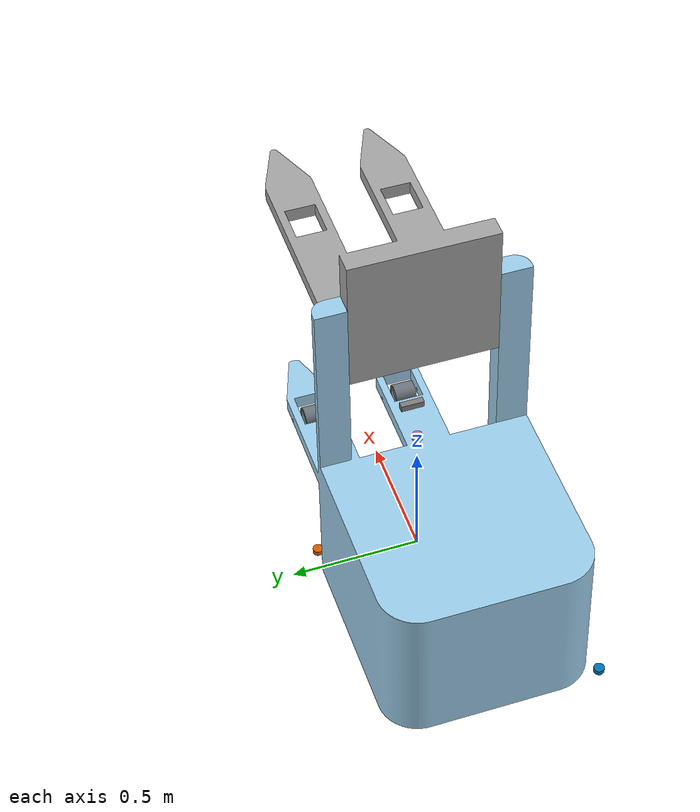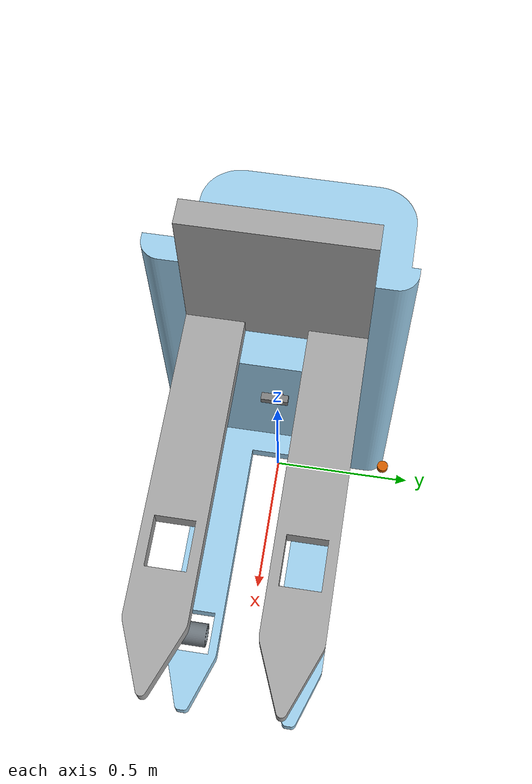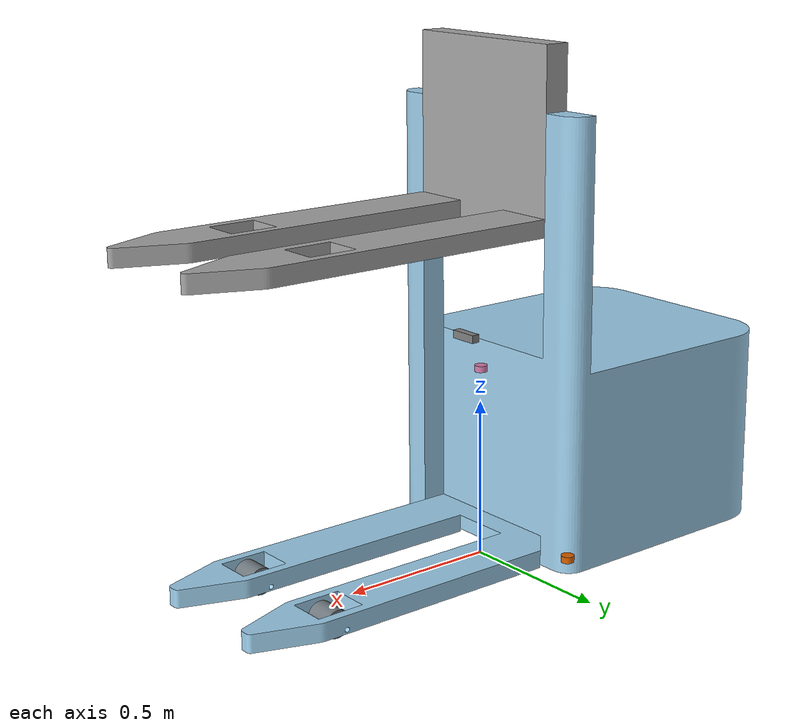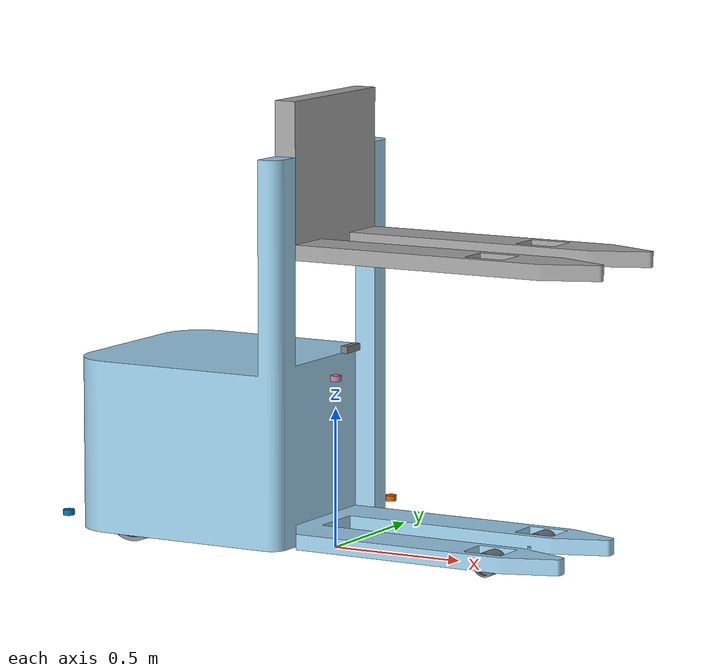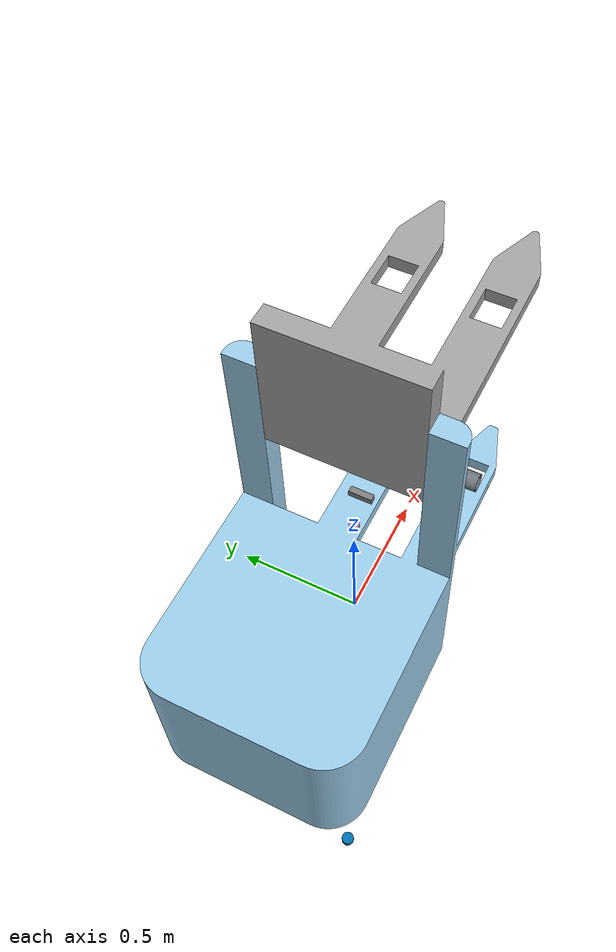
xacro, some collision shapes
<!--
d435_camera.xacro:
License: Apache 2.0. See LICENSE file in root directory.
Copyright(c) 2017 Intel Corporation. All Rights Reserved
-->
<?xml version="1.0" ?>
<robot name="EVX_14" xmlns:xacro="http://www.ros.org/wiki/xacro" >

<xacro:include filename="$(find forklift_simulator)/urdf/EVX_14/inertia.xacro" />
<xacro:include filename="$(find forklift_simulator)/urdf/EVX_14/base.xacro" />
<xacro:include filename="$(find forklift_simulator)/urdf/EVX_14/nav_lidar.xacro" />
<xacro:include filename="$(find forklift_simulator)/urdf/EVX_14/detection_lidar.xacro" />
<xacro:include filename="$(find forklift_simulator)/urdf/EVX_14/drive_wheels.xacro" />
<xacro:include filename="$(find forklift_simulator)/urdf/EVX_14/load_wheels.xacro" />
<xacro:include filename="$(find forklift_simulator)/urdf/EVX_14/d435_camera.xacro" />
<xacro:include filename="$(find forklift_simulator)/urdf/EVX_14/load_fork_joint.xacro" />

<xacro:camera_d435 name="camera" topics_ns="camera" parent="base_link" publish_pointcloud="true"> <origin xyz="0.06 0 0.7" rpy="0 0 0" /> </xacro:camera_d435>

<xacro:evx_drive_wheel name="left" x_steering="-0.662" y_steering="0.267" z_steering="0.115" radius="0.115" width="0.09" flip="1" />
<xacro:evx_drive_wheel name="right" x_steering="-0.662" y_steering="-0.267" z_steering="0.115" radius="0.115" width="0.09" flip="1" />

<xacro:evx_load_wheel name="right" x_loading="0.724" y_loading="0.192" z_loading="0.0425" radius="0.0425" width="0.085" flip="1" />
<xacro:evx_load_wheel name="left" x_loading="0.724" y_loading="-0.192" z_loading="0.0425" radius="0.0425" width="0.085" flip="1" />

<xacro:nav_lidar name="back"  x="-0.872"  y="-0.4" z="0.1" roll="0" pitch="0" yaw="1.57" resolution="1"/>
<xacro:nav_lidar name="front"  x="0"  y="0.4" z="0.1" roll="0" pitch="0" yaw="-1.57" resolution="1"/>

<xacro:detection_lidar name="front"  x="0.0"  y="0.0" z="0.6" roll="0" pitch="0" yaw="0" resolution="1"/>

</robot>

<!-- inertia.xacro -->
<robot xmlns:xacro="http://www.ros.org/wiki/xacro">

    <xacro:macro  name="cylinder_inertia" params="mass r l">
      <inertia  ixx="${mass*(3*r*r+l*l)/12}" ixy = "0" ixz = "0"
                iyy="${mass*(3*r*r+l*l)/12}" iyz = "0"
                izz="${mass*(r*r)/2}" />
    </xacro:macro >

    <xacro:macro name="box_inertia" params="mass x y z">
      <inertia  ixx="${mass*(y*y+z*z)/12}" ixy = "0" ixz = "0"
                iyy="${mass*(x*x+z*z)/12}" iyz = "0"
                izz="${mass*(x*x+y*y)/12}"/>
    </xacro:macro>

    <xacro:macro name="sphere_inertia" params="mass r">
      <inertia
          ixx="${2*mass*r*r/5}" ixy = "0" ixz = "0"
          iyy="${2*mass*r*r/5}" iyz = "0"
          izz="${2*mass*r*r/5}"/>
    </xacro:macro>

</robot>

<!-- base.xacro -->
<robot name="EVX_14" xmlns:xacro="http://www.ros.org/wiki/xacro">

  <link name="base_footprint"/>

  <link name="base_link">
   <inertial>
    <origin xyz="-0.436 0 0.349" rpy="0 0 0"/>
     <xacro:box_inertia mass="200" x="0.872" y="0.8" z="0.618"/>
    <mass value= "200"/>
    </inertial>

    <collision>
      <origin rpy="0 0 0" xyz="0 0 0"/>
      <geometry>
        <mesh
          filename="$(find forklift_simulator)/urdf/EVX_14/meshes/EVX_14_base.dae" />
      </geometry>
    </collision>
    <visual>
      <origin rpy="0 0 0" xyz="0 0 0"/>
      <geometry>
        <mesh
        filename="$(find forklift_simulator)/urdf/EVX_14/meshes/EVX_14_base.dae" />
      </geometry>
    </visual>
  </link>

  <joint name="imu_joint" type="fixed">
    <parent link="base_link"/>
    <child link="imu_link"/>
    <origin xyz="0.0 0 0.068" rpy="0 0 0"/>
  </joint>

  <link name="imu_link"/>

  <joint name="base_joint" type="fixed">
    <parent link="base_footprint" />
    <child link="base_link" />
    <origin xyz="0.0 0 0.010" rpy="0 0 0" />
    <axis xyz="0 0 1" />
  </joint>

</robot>

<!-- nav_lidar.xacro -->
<robot name="EVX_14" xmlns:xacro="http://www.ros.org/wiki/xacro">

<xacro:macro name="nav_lidar" params="name x y z roll pitch yaw resolution">

  <link name="${name}_nav_lidar">
      <inertial>
      <origin xyz="0 0 0" rpy="0 0 0"/>
      <xacro:cylinder_inertia mass="0.01" r="0.02" l="0.02" />
      <mass value= "0.01"/>
      </inertial>

      <collision>
      <origin xyz="0 0 0" rpy="0 0 0"/>
      <geometry>
            <cylinder radius="0.02" length="0.02"/>
      </geometry>
      </collision>

      <visual>
      <origin xyz="0 0 0" rpy="0 0 0"/>
      <geometry>
      <cylinder radius="0.02" length="0.02"/>
      </geometry>
      </visual>
  </link>

  <gazebo reference="${name}_nav_lidar"  >
      <sensor name="/scan_${name}_nav_lidar_sensor" type="ray">
        <pose>0 0 0 0 0   0</pose>
        <visualize>false</visualize>
        <update_rate>20</update_rate>
          <ray>
          <scan>
            <horizontal>
              <samples>270</samples>
                <resolution>1</resolution>
              <min_angle>0</min_angle>
                <max_angle>4.71238</max_angle>
            </horizontal>
          </scan>
            <range>
            <min>0.10</min>
            <max>10.0</max>
              <resolution>0.01</resolution>
          </range>
          <noise>
              <type>gaussian</type>
            <mean>0.0</mean>
            <stddev>0.001</stddev>
            </noise>
        </ray>
        <plugin filename="libgazebo_ros_laser.so"   name="gazebo_ros_head_hokuyo_controller">
          <topicName>/${name}_nav_lidar</topicName>
            <frameName>${name}_nav_lidar</frameName>
        </plugin>
      </sensor>
    </gazebo>

  <joint name="lidar_joint_${name}" type="fixed">

      <parent link="base_link" />
    <child link="${name}_nav_lidar" />
    <origin xyz="${x} ${y} ${z}" rpy="${roll} ${pitch} ${yaw}" />
    <axis xyz="0 0 1" />
  </joint>

 </xacro:macro>

</robot>

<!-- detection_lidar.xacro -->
<robot name="EVX_14" xmlns:xacro="http://www.ros.org/wiki/xacro">

<xacro:macro name="detection_lidar" params="name x y z roll pitch yaw resolution">

  <link name="${name}_detection_lidar">
      <inertial>
      <origin xyz="0 0 0" rpy="0 0 0"/>
      <xacro:cylinder_inertia mass="0.01" r="0.02" l="0.02" />
      <mass value= "0.01"/>
      </inertial>

      <collision>
      <origin xyz="0 0 0" rpy="0 0 0"/>
      <geometry>
            <cylinder radius="0.02" length="0.02"/>
      </geometry>
      </collision>

      <visual>
      <origin xyz="0 0 0" rpy="0 0 0"/>
      <geometry>
      <cylinder radius="0.02" length="0.02"/>
      </geometry>
      </visual>
  </link>

  <gazebo reference="${name}_detection_lidar"  >
      <sensor name="/scan_${name}_detection_lidar_sensor" type="ray">
        <pose>0 0 0 0 0   0</pose>
        <visualize>false</visualize>
        <update_rate>20</update_rate>
          <ray>
          <scan>
            <horizontal>
              <samples>200</samples>
                <resolution>1</resolution>
              <min_angle>-0.5</min_angle>
                <max_angle>0.5</max_angle>
            </horizontal>
            <vertical>
              <samples>30</samples>
                <resolution>1</resolution>
              <min_angle>-0.1</min_angle>
                <max_angle>0.5</max_angle>
            </vertical>
          </scan>
            <range>
            <min>0.10</min>
            <max>15.0</max>
              <resolution>0.01</resolution>
          </range>
          <noise>
              <type>gaussian</type>
            <mean>0.0</mean>
            <stddev>0.001</stddev>
            </noise>
        </ray>
        <plugin name="gazebo_ros_laser_controller" filename="libgazebo_ros_velodyne_laser.so">
          <topicName>/${name}_detection_lidar</topicName>
            <frameName>${name}_detection_lidar</frameName>
        </plugin>
      </sensor>
    </gazebo>

  <joint name="detection_lidar_joint_${name}" type="fixed">

      <parent link="base_link" />
    <child link="${name}_detection_lidar" />
    <origin xyz="${x} ${y} ${z}" rpy="${roll} ${pitch} ${yaw}" />
    <axis xyz="0 0 1" />
  </joint>

 </xacro:macro>

</robot>

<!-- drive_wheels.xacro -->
<robot name="EVX_14" xmlns:xacro="http://www.ros.org/wiki/xacro">

<xacro:macro name="evx_drive_wheel" params="name x_steering y_steering z_steering radius width flip">

  <link name="wheel_${name}_steering_link">
    <inertial>
    <origin xyz="0 0 0.1125" rpy="0 0 0"/>
    <xacro:cylinder_inertia mass="1" r="0.05" l="0.225" />
    <mass value= "1"/>
    </inertial>

    <collision >
    <origin xyz="0 0 0" rpy="0 0 0"/>
    <geometry>
        <mesh filename="$(find forklift_simulator)/urdf/EVX_14/meshes/EVX_14_steering_rod.dae" />
    </geometry>
    </collision>

    <visual >
    <origin xyz="0 0 0" rpy="0 0 0"/>
    <geometry>
        <mesh filename="$(find forklift_simulator)/urdf/EVX_14/meshes/EVX_14_steering_rod.dae" />
    </geometry>
    </visual>
  </link>

  <joint name="wheel_${name}_steering_joint" type="revolute">
    <parent link="base_link" />
    <child link="wheel_${name}_steering_link" />
    <origin xyz="${x_steering} ${y_steering} ${z_steering }" rpy="0 0 0" />
    <axis xyz="0 0 1" />
    <limit lower="-1.0" upper="1.0" effort="30" velocity="0.3"/>
     <dynamics damping="1" friction="1"/>
  </joint>

  <link name="wheel_${name}_link">
    <inertial>
    <origin xyz="0 0 0" rpy="0 0 0"/>
    <xacro:cylinder_inertia mass="0.5" r="${radius}" l="${width}" />
    <mass value= "0.5"/>
    </inertial>

    <collision >
      <origin xyz="0 0 0" rpy="0 0 0"/>
      <geometry>
           <cylinder radius="${radius}" length="${width}"/>
      </geometry>
    </collision>

    <visual>
    <origin xyz="0 0 0" rpy="0 0 0"/>
    <geometry>
        <mesh filename="$(find forklift_simulator)/urdf/EVX_14/meshes/EVX_14_drive_wheel.dae" />
    </geometry>
    </visual>
  </link>

  <joint name="wheel_${name}_joint" type="continuous">
    <parent link="wheel_${name}_steering_link" />
    <child link="wheel_${name}_link" />
    <origin xyz=" 0 0 0" rpy="1.57 0 0" />
    <axis xyz="0 0 ${1*flip}" />
        <limit effort="100" velocity="100"/>
     <dynamics damping="0.01" friction="1.0"/>
  </joint>

  <transmission name="trans_steering_${name}">
    <type>transmission_interface/SimpleTransmission</type>
    <joint name="wheel_${name}_steering_joint">
      <hardwareInterface>hardware_interface/EffortJointInterface</hardwareInterface>
    </joint>
    <actuator name="motor_steering_wheel_${name}">
      <hardwareInterface>hardware_interface/EffortJointInterface</hardwareInterface>
      <mechanicalReduction>1</mechanicalReduction>
    </actuator>
  </transmission>

  <transmission name="trans_dynamic_${name}">
    <type>transmission_interface/SimpleTransmission</type>
    <joint name="wheel_${name}_joint">
      <hardwareInterface>hardware_interface/EffortJointInterface</hardwareInterface>
    </joint>
    <actuator name="motor_dynamic_wheel_${name}">
      <hardwareInterface>hardware_interface/EffortJointInterface</hardwareInterface>
      <mechanicalReduction>1</mechanicalReduction>
    </actuator>
  </transmission>

  <gazebo reference="wheel_${name}_link">
			<mu1>1</mu1>
			<mu2>1</mu2>
			<kp>1000000000.0</kp>
			<kd>1000.0</kd>
			<minDepth>0.001</minDepth>
			<maxVel>0</maxVel>
		</gazebo>

 </xacro:macro>

</robot>

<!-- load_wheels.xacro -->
<robot name="EVX_14" xmlns:xacro="http://www.ros.org/wiki/xacro">

<xacro:macro name="evx_load_wheel" params="name x_loading y_loading z_loading radius width flip">

  <link name="wheel_${name}_driving_link">
    <inertial>
    <origin xyz="0 0 0" rpy="0 0 0"/>
    <xacro:cylinder_inertia mass="1" r="${radius}" l="${width}" />
    <mass value= "1"/>
    </inertial>

    <collision >
      <origin xyz="0 0 0" rpy="0 0 0"/>
      <geometry>
           <cylinder radius="${radius}" length="${width}"/>
      </geometry>
    </collision>

    <visual>
    <origin xyz="0 0 0" rpy="0 0 0"/>
    <geometry>
        <mesh filename="$(find forklift_simulator)/urdf/EVX_14/meshes/EVX_14_load_wheel.dae" />
    </geometry>
    </visual>
  </link>

  <joint name="wheel_${name}_driving_joint" type="continuous">
    <parent link="base_link" />
    <child link="wheel_${name}_driving_link" />
    <origin xyz="${x_loading} ${y_loading} ${z_loading}" rpy="1.57 0 0" />
    <axis xyz="0 0 ${1*flip}" />
    <joint_properties damping="1.0" friction="1.0"/>
  </joint>

  <gazebo reference="wheel_${name}_driving_link">
			<mu1>1</mu1>
			<mu2>1</mu2>
			<kp>1000000000.0</kp>
			<kd>1000.0</kd>
			<minDepth>0.001</minDepth>
			<maxVel>0</maxVel>
		</gazebo>

 </xacro:macro>

</robot>

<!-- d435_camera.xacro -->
<robot name="camera_d435" xmlns:xacro="http://ros.org/wiki/xacro">
  <!--File includes-->
  <xacro:include filename="$(find forklift_simulator)/urdf/EVX_14/d435_sensor.xacro"/>

  <xacro:macro name="camera_d435" params="name:=camera topics_ns:=camera parent *origin publish_pointcloud:=true">
    <xacro:property name="M_PI" value="3.1415926535897931" />

    <!-- The following values are approximate, and the camera node
     publishing TF values with actual calibrated camera extrinsic values -->
    <xacro:property name="d435_cam_depth_to_left_ir_offset" value="0.0"/>
    <xacro:property name="d435_cam_depth_to_right_ir_offset" value="-0.050"/>
    <xacro:property name="d435_cam_depth_to_color_offset" value="0.015"/>

    <!-- The following values model the aluminum peripherial case for the
    D435 camera, with the camera joint represented by the actual
    peripherial camera tripod mount -->
    <xacro:property name="d435_cam_width" value="0.090"/>
    <xacro:property name="d435_cam_height" value="0.025"/>
    <xacro:property name="d435_cam_depth" value="0.02505"/>
    <xacro:property name="d435_cam_mount_from_center_offset" value="0.0149"/>

    <!-- The following offset is relative the the physical D435 camera peripherial
    camera tripod mount -->
    <xacro:property name="d435_cam_depth_px" value="${d435_cam_mount_from_center_offset}"/>
    <xacro:property name="d435_cam_depth_py" value="0.0175"/>
    <xacro:property name="d435_cam_depth_pz" value="${d435_cam_height/2}"/>

    <material name="${name}_aluminum">
    <color rgba="0.5 0.5 0.5 1"/>
    </material>

    <!-- camera body, with origin at bottom screw mount -->
    <joint name="${name}_joint" type="fixed">
      <xacro:insert_block name="origin" />
      <parent link="${parent}"/>
      <child link="${name}_bottom_screw_frame" />
    </joint>
    <link name="${name}_bottom_screw_frame"/>

    <joint name="${name}_link_joint" type="fixed">
      <origin xyz="0 ${d435_cam_depth_py} ${d435_cam_depth_pz}" rpy="0 0 0"/>
      <parent link="${name}_bottom_screw_frame"/>
      <child link="${name}_link" />
    </joint>

    <link name="${name}_link">
      <visual>
      <origin xyz="${d435_cam_mount_from_center_offset} ${-d435_cam_depth_py} 0" rpy="${M_PI/2} 0 ${M_PI/2}"/>
        <geometry>
          <mesh filename="package://forklift_simulator/urdf/EVX_14/meshes/d435.dae" />
        </geometry>
        <material name="${name}_aluminum"/>
      </visual>
      <collision>
        <origin xyz="0 ${-d435_cam_depth_py} 0" rpy="0 0 0"/>
        <geometry>
        <box size="${d435_cam_depth} ${d435_cam_width} ${d435_cam_height}"/>
        </geometry>
      </collision>
      <inertial>
        <!-- The following are not reliable values, and should not be used for modeling -->
        <mass value="0.564" />
        <origin xyz="0 0 0" />
        <inertia ixx="0.003881243" ixy="0.0" ixz="0.0" iyy="0.000498940" iyz="0.0" izz="0.003879257" />
      </inertial>
    </link>

    <!-- camera depth joints and links -->
    <joint name="${name}_depth_joint" type="fixed">
      <origin xyz="0 0 0" rpy="0 0 0"/>
      <parent link="${name}_link"/>
      <child link="${name}_depth_frame" />
    </joint>
    <link name="${name}_depth_frame"/>

    <joint name="${name}_depth_optical_joint" type="fixed">
      <origin xyz="0 0 0" rpy="${-M_PI/2} 0 ${-M_PI/2}" />
      <parent link="${name}_depth_frame" />
      <child link="${name}_depth_optical_frame" />
    </joint>
    <link name="${name}_depth_optical_frame"/>

    <!-- camera left IR joints and links -->
    <joint name="${name}_left_ir_joint" type="fixed">
      <origin xyz="0 ${d435_cam_depth_to_left_ir_offset} 0" rpy="0 0 0" />
      <parent link="${name}_depth_frame" />
      <child link="${name}_left_ir_frame" />
    </joint>
    <link name="${name}_left_ir_frame"/>

    <joint name="${name}_left_ir_optical_joint" type="fixed">
      <origin xyz="0 0 0" rpy="${-M_PI/2} 0 ${-M_PI/2}" />
      <parent link="${name}_left_ir_frame" />
      <child link="${name}_left_ir_optical_frame" />
    </joint>
    <link name="${name}_left_ir_optical_frame"/>

    <!-- camera right IR joints and links -->
    <joint name="${name}_right_ir_joint" type="fixed">
      <origin xyz="0 ${d435_cam_depth_to_right_ir_offset} 0" rpy="0 0 0" />
      <parent link="${name}_depth_frame" />
      <child link="${name}_right_ir_frame" />
    </joint>
    <link name="${name}_right_ir_frame"/>

    <joint name="${name}_right_ir_optical_joint" type="fixed">
      <origin xyz="0 0 0" rpy="${-M_PI/2} 0 ${-M_PI/2}" />
      <parent link="${name}_right_ir_frame" />
      <child link="${name}_right_ir_optical_frame" />
    </joint>
    <link name="${name}_right_ir_optical_frame"/>

    <!-- camera color joints and links -->
    <joint name="${name}_color_joint" type="fixed">
      <origin xyz="0 ${d435_cam_depth_to_color_offset} 0" rpy="0 0 0" />
      <parent link="${name}_depth_frame" />
      <child link="${name}_color_frame" />
    </joint>
    <link name="${name}_color_frame"/>

    <joint name="${name}_color_optical_joint" type="fixed">
      <origin xyz="0 0 0" rpy="${-M_PI/2} 0 ${-M_PI/2}" />
      <parent link="${name}_color_frame" />
      <child link="${name}_color_optical_frame" />
    </joint>
    <link name="${name}_color_optical_frame"/>

    <!-- Realsense Gazebo Plugin -->
    <xacro:gazebo_d435 camera_name="${name}" reference_link="${name}_link" topics_ns="${topics_ns}" depth_optical_frame="${name}_depth_optical_frame" color_optical_frame="${name}_color_optical_frame" infrared1_optical_frame="${name}_left_ir_optical_frame" infrared2_optical_frame="${name}_right_ir_optical_frame" publish_pointcloud="${publish_pointcloud}"/>

  </xacro:macro>
</robot>

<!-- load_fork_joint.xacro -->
<robot name="EVX_14" xmlns:xacro="http://www.ros.org/wiki/xacro">

 <link name="pris_link">
    <inertial>
    <origin xyz="0 0 0" rpy="0 0 0"/>
    <xacro:box_inertia mass="0.1" x="0.2" y="0.1" z="0.05"/>
    <mass value= "0.1"/>
    </inertial>

    <collision name="pris_collision">
    <origin xyz="0 0 0" rpy="0 0 0"/>
    <geometry> <mesh filename="$(find forklift_simulator)/urdf/EVX_14/meshes/EVX_14_load_fork.dae" />
    </geometry>

      <surface>
              <friction>
                <ode>
                  <mu>1.0</mu>
                  <mu2>1.0</mu2>
                  <fdir1>0.000000 0.000000 0.000000</fdir1>
                  <slip1>0.000000</slip1>
                  <slip2>0.000000</slip2>
                </ode>
              </friction>
              <bounce>
                <restitution_coefficient>0.0</restitution_coefficient>
                <threshold>100000.0</threshold>
              </bounce>
              <contact>
                <ode>
                  <soft_cfm>0.000000</soft_cfm>
                  <soft_erp>0.200000</soft_erp>
                  <kp>3000000000.000000</kp>
                  <kd>1.000000</kd>
                  <max_vel>0.010000</max_vel>
                  <min_depth>0.00000</min_depth>
                </ode>
              </contact>
      </surface>

    </collision>

    <visual name="pris_visual">
    <origin xyz="0 0 0" rpy="0 0 0"/>
    <geometry>
          <mesh filename="$(find forklift_simulator)/urdf/EVX_14/meshes/EVX_14_load_fork.dae" />
    </geometry>
    </visual>
  </link>

  <joint name="pris_joint" type="prismatic">
    <parent link="base_link" />
    <child link="pris_link" />
    <origin xyz="0 0 0.03" rpy="0 0 0" />
    <axis xyz="0 0 1" />
    <limit lower="0.05" upper="2" effort="100" velocity="0.3"/>
     <dynamics damping="100.0" friction="1"/>
  </joint>

  <transmission name="tran1">
    <type>transmission_interface/SimpleTransmission</type>
    <joint name="pris_joint">
      <hardwareInterface>hardware_interface/EffortJointInterface</hardwareInterface>
    </joint>
    <actuator name="motor1">
      <hardwareInterface>hardware_interface/EffortJointInterface</hardwareInterface>
      <mechanicalReduction>1</mechanicalReduction>
    </actuator>
  </transmission>

  <gazebo>
    <plugin name="gazebo_ros_control" filename="libgazebo_ros_control.so">
      <robotNamespace>/EVX_14</robotNamespace>
      <robotSimType>gazebo_ros_control/DefaultRobotHWSim</robotSimType>
    </plugin>
  </gazebo>

  </robot>
